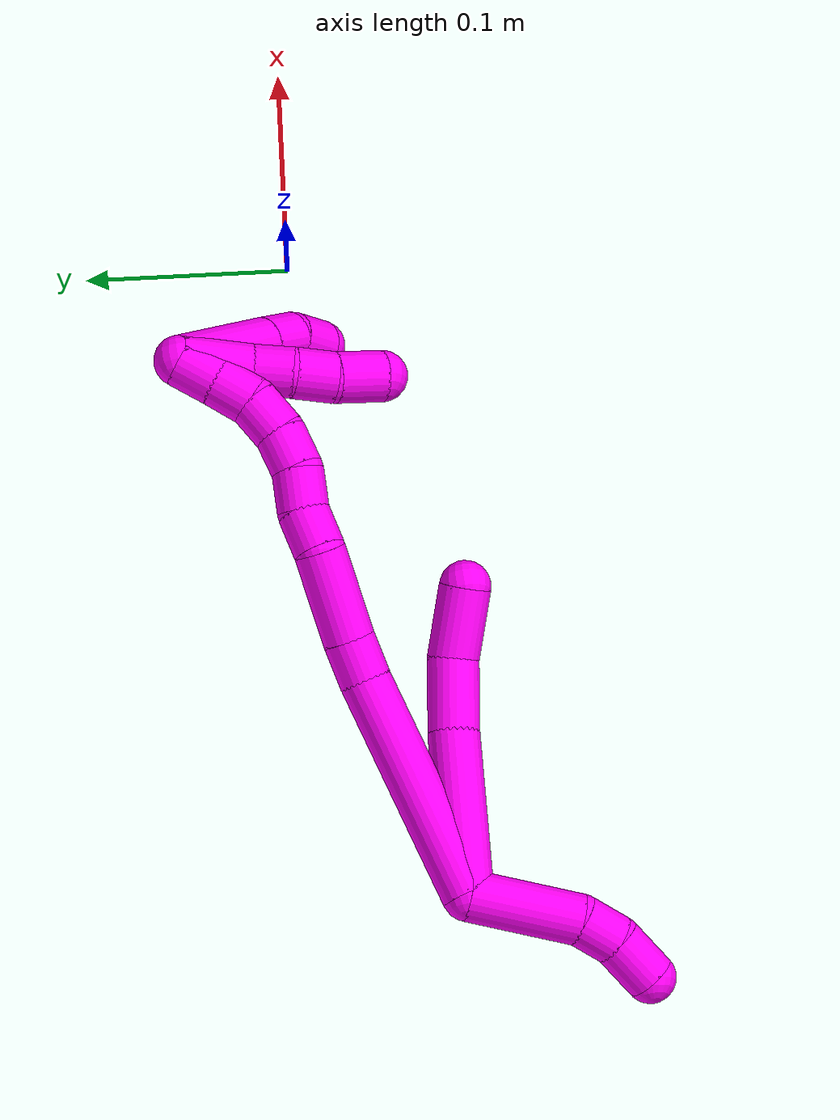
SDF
<sdf version="1.7">
 <world name="default">
  <model name="10">
   <static>0</static>
   <link name="10">
    <collision name="collision-cylinder-e_1_2_8">
     <pose>0.004964 0.00016 -0.039201 -3.1375 0.125959 -3.07674</pose>
     <geometry><cylinder><radius>0.0125</radius><length>0.079028</length></cylinder></geometry>
     <surface>
      <friction><ode><mu>1.16</mu><mu2>1.16</mu2><slip1>0</slip1><slip2>0</slip2></ode></friction>
      <contact><ode><kp>1e+06</kp><kd>1</kd><max_vel>0</max_vel><min_depth>0.001</min_depth></ode></contact>
     </surface>
    </collision>
    <visual name="visual-cylinder-e_1_2_8">
     <pose>0.004964 0.00016 -0.039201 -3.1375 0.125959 -3.07674</pose>
     <geometry><cylinder><radius>0.0125</radius><length>0.079028</length></cylinder></geometry>
     <material><ambient>1 0 0.964706 1</ambient></material>
    </visual>
    <collision name="collision-cylinder-e_2_8_9">
     <pose>0.014271 0.000201 -0.095752 3.13471 0.245283 3.08574</pose>
     <geometry><cylinder><radius>0.0125</radius><length>0.035773</length></cylinder></geometry>
     <surface>
      <friction><ode><mu>1.16</mu><mu2>1.16</mu2><slip1>0</slip1><slip2>0</slip2></ode></friction>
      <contact><ode><kp>1e+06</kp><kd>1</kd><max_vel>0</max_vel><min_depth>0.001</min_depth></ode></contact>
     </surface>
    </collision>
    <visual name="visual-cylinder-e_2_8_9">
     <pose>0.014271 0.000201 -0.095752 3.13471 0.245283 3.08574</pose>
     <geometry><cylinder><radius>0.0125</radius><length>0.035773</length></cylinder></geometry>
     <material><ambient>1 0 0.964706 1</ambient></material>
    </visual>
    <collision name="collision-cylinder-e_3_9_6">
     <pose>0.027957 6.4e-05 -0.128018 3.14039 0.55959 3.1374</pose>
     <geometry><cylinder><radius>0.0125</radius><length>0.035199</length></cylinder></geometry>
     <surface>
      <friction><ode><mu>1.16</mu><mu2>1.16</mu2><slip1>0</slip1><slip2>0</slip2></ode></friction>
      <contact><ode><kp>1e+06</kp><kd>1</kd><max_vel>0</max_vel><min_depth>0.001</min_depth></ode></contact>
     </surface>
    </collision>
    <visual name="visual-cylinder-e_3_9_6">
     <pose>0.027957 6.4e-05 -0.128018 3.14039 0.55959 3.1374</pose>
     <geometry><cylinder><radius>0.0125</radius><length>0.035199</length></cylinder></geometry>
     <material><ambient>1 0 0.964706 1</ambient></material>
    </visual>
    <collision name="collision-cylinder-e_1_2_10">
     <pose>0.009279 -0.024647 0.008109 1.25296 0.343456 0.249739</pose>
     <geometry><cylinder><radius>0.0125</radius><length>0.055112</length></cylinder></geometry>
     <surface>
      <friction><ode><mu>1.16</mu><mu2>1.16</mu2><slip1>0</slip1><slip2>0</slip2></ode></friction>
      <contact><ode><kp>1e+06</kp><kd>1</kd><max_vel>0</max_vel><min_depth>0.001</min_depth></ode></contact>
     </surface>
    </collision>
    <visual name="visual-cylinder-e_1_2_10">
     <pose>0.009279 -0.024647 0.008109 1.25296 0.343456 0.249739</pose>
     <geometry><cylinder><radius>0.0125</radius><length>0.055112</length></cylinder></geometry>
     <material><ambient>1 0 0.964706 1</ambient></material>
    </visual>
    <collision name="collision-cylinder-e_2_10_11">
     <pose>0.019658 -0.057935 0.021325 1.03692 0.109142 0.06231</pose>
     <geometry><cylinder><radius>0.0125</radius><length>0.020196</length></cylinder></geometry>
     <surface>
      <friction><ode><mu>1.16</mu><mu2>1.16</mu2><slip1>0</slip1><slip2>0</slip2></ode></friction>
      <contact><ode><kp>1e+06</kp><kd>1</kd><max_vel>0</max_vel><min_depth>0.001</min_depth></ode></contact>
     </surface>
    </collision>
    <visual name="visual-cylinder-e_2_10_11">
     <pose>0.019658 -0.057935 0.021325 1.03692 0.109142 0.06231</pose>
     <geometry><cylinder><radius>0.0125</radius><length>0.020196</length></cylinder></geometry>
     <material><ambient>1 0 0.964706 1</ambient></material>
    </visual>
    <collision name="collision-cylinder-e_3_11_5">
     <pose>0.019886 -0.075547 0.034871 0.816017 -0.070727 -0.030583</pose>
     <geometry><cylinder><radius>0.0125</radius><length>0.024692</length></cylinder></geometry>
     <surface>
      <friction><ode><mu>1.16</mu><mu2>1.16</mu2><slip1>0</slip1><slip2>0</slip2></ode></friction>
      <contact><ode><kp>1e+06</kp><kd>1</kd><max_vel>0</max_vel><min_depth>0.001</min_depth></ode></contact>
     </surface>
    </collision>
    <visual name="visual-cylinder-e_3_11_5">
     <pose>0.019886 -0.075547 0.034871 0.816017 -0.070727 -0.030583</pose>
     <geometry><cylinder><radius>0.0125</radius><length>0.024692</length></cylinder></geometry>
     <material><ambient>1 0 0.964706 1</ambient></material>
    </visual>
    <collision name="collision-cylinder-e_1_2_12">
     <pose>5.2e-05 0.019761 -0.052839 -2.7837 0.000916 -0.005065</pose>
     <geometry><cylinder><radius>0.0125</radius><length>0.112827</length></cylinder></geometry>
     <surface>
      <friction><ode><mu>1.16</mu><mu2>1.16</mu2><slip1>0</slip1><slip2>0</slip2></ode></friction>
      <contact><ode><kp>1e+06</kp><kd>1</kd><max_vel>0</max_vel><min_depth>0.001</min_depth></ode></contact>
     </surface>
    </collision>
    <visual name="visual-cylinder-e_1_2_12">
     <pose>5.2e-05 0.019761 -0.052839 -2.7837 0.000916 -0.005065</pose>
     <geometry><cylinder><radius>0.0125</radius><length>0.112827</length></cylinder></geometry>
     <material><ambient>1 0 0.964706 1</ambient></material>
    </visual>
    <collision name="collision-cylinder-e_2_12_13">
     <pose>0.002503 0.044204 -0.115073 -2.6794 0.224748 -0.894385</pose>
     <geometry><cylinder><radius>0.0125</radius><length>0.021535</length></cylinder></geometry>
     <surface>
      <friction><ode><mu>1.16</mu><mu2>1.16</mu2><slip1>0</slip1><slip2>0</slip2></ode></friction>
      <contact><ode><kp>1e+06</kp><kd>1</kd><max_vel>0</max_vel><min_depth>0.001</min_depth></ode></contact>
     </surface>
    </collision>
    <visual name="visual-cylinder-e_2_12_13">
     <pose>0.002503 0.044204 -0.115073 -2.6794 0.224748 -0.894385</pose>
     <geometry><cylinder><radius>0.0125</radius><length>0.021535</length></cylinder></geometry>
     <material><ambient>1 0 0.964706 1</ambient></material>
    </visual>
    <collision name="collision-cylinder-e_3_13_14">
     <pose>0.01114 0.057825 -0.143869 -2.70976 0.284111 -1.15565</pose>
     <geometry><cylinder><radius>0.0125</radius><length>0.044508</length></cylinder></geometry>
     <surface>
      <friction><ode><mu>1.16</mu><mu2>1.16</mu2><slip1>0</slip1><slip2>0</slip2></ode></friction>
      <contact><ode><kp>1e+06</kp><kd>1</kd><max_vel>0</max_vel><min_depth>0.001</min_depth></ode></contact>
     </surface>
    </collision>
    <visual name="visual-cylinder-e_3_13_14">
     <pose>0.01114 0.057825 -0.143869 -2.70976 0.284111 -1.15565</pose>
     <geometry><cylinder><radius>0.0125</radius><length>0.044508</length></cylinder></geometry>
     <material><ambient>1 0 0.964706 1</ambient></material>
    </visual>
    <collision name="collision-cylinder-e_4_14_15">
     <pose>0.017149 0.069546 -0.173052 -2.8646 -0.022516 0.161186</pose>
     <geometry><cylinder><radius>0.0125</radius><length>0.020346</length></cylinder></geometry>
     <surface>
      <friction><ode><mu>1.16</mu><mu2>1.16</mu2><slip1>0</slip1><slip2>0</slip2></ode></friction>
      <contact><ode><kp>1e+06</kp><kd>1</kd><max_vel>0</max_vel><min_depth>0.001</min_depth></ode></contact>
     </surface>
    </collision>
    <visual name="visual-cylinder-e_4_14_15">
     <pose>0.017149 0.069546 -0.173052 -2.8646 -0.022516 0.161186</pose>
     <geometry><cylinder><radius>0.0125</radius><length>0.020346</length></cylinder></geometry>
     <material><ambient>1 0 0.964706 1</ambient></material>
    </visual>
    <collision name="collision-cylinder-e_5_15_16">
     <pose>0.018986 0.073601 -0.192736 -3.01373 0.204069 -2.02403</pose>
     <geometry><cylinder><radius>0.0125</radius><length>0.020389</length></cylinder></geometry>
     <surface>
      <friction><ode><mu>1.16</mu><mu2>1.16</mu2><slip1>0</slip1><slip2>0</slip2></ode></friction>
      <contact><ode><kp>1e+06</kp><kd>1</kd><max_vel>0</max_vel><min_depth>0.001</min_depth></ode></contact>
     </surface>
    </collision>
    <visual name="visual-cylinder-e_5_15_16">
     <pose>0.018986 0.073601 -0.192736 -3.01373 0.204069 -2.02403</pose>
     <geometry><cylinder><radius>0.0125</radius><length>0.020389</length></cylinder></geometry>
     <material><ambient>1 0 0.964706 1</ambient></material>
    </visual>
    <collision name="collision-cylinder-e_6_16_17">
     <pose>0.020489 0.077901 -0.212164 -2.83392 -0.056305 0.359292</pose>
     <geometry><cylinder><radius>0.0125</radius><length>0.020024</length></cylinder></geometry>
     <surface>
      <friction><ode><mu>1.16</mu><mu2>1.16</mu2><slip1>0</slip1><slip2>0</slip2></ode></friction>
      <contact><ode><kp>1e+06</kp><kd>1</kd><max_vel>0</max_vel><min_depth>0.001</min_depth></ode></contact>
     </surface>
    </collision>
    <visual name="visual-cylinder-e_6_16_17">
     <pose>0.020489 0.077901 -0.212164 -2.83392 -0.056305 0.359292</pose>
     <geometry><cylinder><radius>0.0125</radius><length>0.020024</length></cylinder></geometry>
     <material><ambient>1 0 0.964706 1</ambient></material>
    </visual>
    <collision name="collision-cylinder-e_7_17_18">
     <pose>0.018309 0.086261 -0.230123 -2.57764 -0.160577 0.541835</pose>
     <geometry><cylinder><radius>0.0125</radius><length>0.020215</length></cylinder></geometry>
     <surface>
      <friction><ode><mu>1.16</mu><mu2>1.16</mu2><slip1>0</slip1><slip2>0</slip2></ode></friction>
      <contact><ode><kp>1e+06</kp><kd>1</kd><max_vel>0</max_vel><min_depth>0.001</min_depth></ode></contact>
     </surface>
    </collision>
    <visual name="visual-cylinder-e_7_17_18">
     <pose>0.018309 0.086261 -0.230123 -2.57764 -0.160577 0.541835</pose>
     <geometry><cylinder><radius>0.0125</radius><length>0.020215</length></cylinder></geometry>
     <material><ambient>1 0 0.964706 1</ambient></material>
    </visual>
    <collision name="collision-cylinder-e_8_18_19">
     <pose>0.013229 0.098667 -0.244771 -2.29181 -0.352537 0.750079</pose>
     <geometry><cylinder><radius>0.0125</radius><length>0.020067</length></cylinder></geometry>
     <surface>
      <friction><ode><mu>1.16</mu><mu2>1.16</mu2><slip1>0</slip1><slip2>0</slip2></ode></friction>
      <contact><ode><kp>1e+06</kp><kd>1</kd><max_vel>0</max_vel><min_depth>0.001</min_depth></ode></contact>
     </surface>
    </collision>
    <visual name="visual-cylinder-e_8_18_19">
     <pose>0.013229 0.098667 -0.244771 -2.29181 -0.352537 0.750079</pose>
     <geometry><cylinder><radius>0.0125</radius><length>0.020067</length></cylinder></geometry>
     <material><ambient>1 0 0.964706 1</ambient></material>
    </visual>
    <collision name="collision-cylinder-e_9_19_1">
     <pose>0.006777 0.113431 -0.256719 -2.21117 -0.301902 0.588473</pose>
     <geometry><cylinder><radius>0.0125</radius><length>0.020091</length></cylinder></geometry>
     <surface>
      <friction><ode><mu>1.16</mu><mu2>1.16</mu2><slip1>0</slip1><slip2>0</slip2></ode></friction>
      <contact><ode><kp>1e+06</kp><kd>1</kd><max_vel>0</max_vel><min_depth>0.001</min_depth></ode></contact>
     </surface>
    </collision>
    <visual name="visual-cylinder-e_9_19_1">
     <pose>0.006777 0.113431 -0.256719 -2.21117 -0.301902 0.588473</pose>
     <geometry><cylinder><radius>0.0125</radius><length>0.020091</length></cylinder></geometry>
     <material><ambient>1 0 0.964706 1</ambient></material>
    </visual>
    <collision name="collision-cylinder-e_1_1_20">
     <pose>-9e-06 0.093518 -0.272198 1.91029 -0.129051 -0.182188</pose>
     <geometry><cylinder><radius>0.0125</radius><length>0.059042</length></cylinder></geometry>
     <surface>
      <friction><ode><mu>1.16</mu><mu2>1.16</mu2><slip1>0</slip1><slip2>0</slip2></ode></friction>
      <contact><ode><kp>1e+06</kp><kd>1</kd><max_vel>0</max_vel><min_depth>0.001</min_depth></ode></contact>
     </surface>
    </collision>
    <visual name="visual-cylinder-e_1_1_20">
     <pose>-9e-06 0.093518 -0.272198 1.91029 -0.129051 -0.182188</pose>
     <geometry><cylinder><radius>0.0125</radius><length>0.059042</length></cylinder></geometry>
     <material><ambient>1 0 0.964706 1</ambient></material>
    </visual>
    <collision name="collision-cylinder-e_2_20_21">
     <pose>-0.005029 0.056308 -0.285054 1.88364 -0.120419 -0.165336</pose>
     <geometry><cylinder><radius>0.0125</radius><length>0.020339</length></cylinder></geometry>
     <surface>
      <friction><ode><mu>1.16</mu><mu2>1.16</mu2><slip1>0</slip1><slip2>0</slip2></ode></friction>
      <contact><ode><kp>1e+06</kp><kd>1</kd><max_vel>0</max_vel><min_depth>0.001</min_depth></ode></contact>
     </surface>
    </collision>
    <visual name="visual-cylinder-e_2_20_21">
     <pose>-0.005029 0.056308 -0.285054 1.88364 -0.120419 -0.165336</pose>
     <geometry><cylinder><radius>0.0125</radius><length>0.020339</length></cylinder></geometry>
     <material><ambient>1 0 0.964706 1</ambient></material>
    </visual>
    <collision name="collision-cylinder-e_3_21_4">
     <pose>-0.00913 0.036805 -0.288389 1.59379 -0.283032 -0.289525</pose>
     <geometry><cylinder><radius>0.0125</radius><length>0.02062</length></cylinder></geometry>
     <surface>
      <friction><ode><mu>1.16</mu><mu2>1.16</mu2><slip1>0</slip1><slip2>0</slip2></ode></friction>
      <contact><ode><kp>1e+06</kp><kd>1</kd><max_vel>0</max_vel><min_depth>0.001</min_depth></ode></contact>
     </surface>
    </collision>
    <visual name="visual-cylinder-e_3_21_4">
     <pose>-0.00913 0.036805 -0.288389 1.59379 -0.283032 -0.289525</pose>
     <geometry><cylinder><radius>0.0125</radius><length>0.02062</length></cylinder></geometry>
     <material><ambient>1 0 0.964706 1</ambient></material>
    </visual>
    <collision name="collision-cylinder-e_1_1_22">
     <pose>0.008899 0.104429 -0.259747 1.41031 0.293349 0.250173</pose>
     <geometry><cylinder><radius>0.0125</radius><length>0.035331</length></cylinder></geometry>
     <surface>
      <friction><ode><mu>1.16</mu><mu2>1.16</mu2><slip1>0</slip1><slip2>0</slip2></ode></friction>
      <contact><ode><kp>1e+06</kp><kd>1</kd><max_vel>0</max_vel><min_depth>0.001</min_depth></ode></contact>
     </surface>
    </collision>
    <visual name="visual-cylinder-e_1_1_22">
     <pose>0.008899 0.104429 -0.259747 1.41031 0.293349 0.250173</pose>
     <geometry><cylinder><radius>0.0125</radius><length>0.035331</length></cylinder></geometry>
     <material><ambient>1 0 0.964706 1</ambient></material>
    </visual>
    <collision name="collision-cylinder-e_2_22_23">
     <pose>0.018928 0.079154 -0.255001 1.33703 0.508841 0.405171</pose>
     <geometry><cylinder><radius>0.0125</radius><length>0.020203</length></cylinder></geometry>
     <surface>
      <friction><ode><mu>1.16</mu><mu2>1.16</mu2><slip1>0</slip1><slip2>0</slip2></ode></friction>
      <contact><ode><kp>1e+06</kp><kd>1</kd><max_vel>0</max_vel><min_depth>0.001</min_depth></ode></contact>
     </surface>
    </collision>
    <visual name="visual-cylinder-e_2_22_23">
     <pose>0.018928 0.079154 -0.255001 1.33703 0.508841 0.405171</pose>
     <geometry><cylinder><radius>0.0125</radius><length>0.020203</length></cylinder></geometry>
     <material><ambient>1 0 0.964706 1</ambient></material>
    </visual>
    <collision name="collision-cylinder-e_3_23_24">
     <pose>0.027053 0.061034 -0.251315 1.4002 0.31966 0.269967</pose>
     <geometry><cylinder><radius>0.0125</radius><length>0.02039</length></cylinder></geometry>
     <surface>
      <friction><ode><mu>1.16</mu><mu2>1.16</mu2><slip1>0</slip1><slip2>0</slip2></ode></friction>
      <contact><ode><kp>1e+06</kp><kd>1</kd><max_vel>0</max_vel><min_depth>0.001</min_depth></ode></contact>
     </surface>
    </collision>
    <visual name="visual-cylinder-e_3_23_24">
     <pose>0.027053 0.061034 -0.251315 1.4002 0.31966 0.269967</pose>
     <geometry><cylinder><radius>0.0125</radius><length>0.02039</length></cylinder></geometry>
     <material><ambient>1 0 0.964706 1</ambient></material>
    </visual>
    <collision name="collision-cylinder-e_4_24_3">
     <pose>0.033416 0.039884 -0.24997 1.59649 0.265604 0.272435</pose>
     <geometry><cylinder><radius>0.0125</radius><length>0.024077</length></cylinder></geometry>
     <surface>
      <friction><ode><mu>1.16</mu><mu2>1.16</mu2><slip1>0</slip1><slip2>0</slip2></ode></friction>
      <contact><ode><kp>1e+06</kp><kd>1</kd><max_vel>0</max_vel><min_depth>0.001</min_depth></ode></contact>
     </surface>
    </collision>
    <visual name="visual-cylinder-e_4_24_3">
     <pose>0.033416 0.039884 -0.24997 1.59649 0.265604 0.272435</pose>
     <geometry><cylinder><radius>0.0125</radius><length>0.024077</length></cylinder></geometry>
     <material><ambient>1 0 0.964706 1</ambient></material>
    </visual>
    <collision name="collision-sphere-3">
     <pose>0.036576 0.028271 -0.250268 0 -0 0</pose>
     <geometry><sphere><radius>0.0125</radius></sphere></geometry>
     <surface>
      <friction><ode><mu>1.16</mu><mu2>1.16</mu2><slip1>0</slip1><slip2>0</slip2></ode></friction>
      <contact><ode><kp>1e+06</kp><kd>1</kd><max_vel>0</max_vel><min_depth>0.001</min_depth></ode></contact>
     </surface>
    </collision>
    <visual name="visual-sphere-3">
     <pose>0.036576 0.028271 -0.250268 0 -0 0</pose>
     <geometry><sphere><radius>0.0125</radius></sphere></geometry>
     <material><ambient>1 0 0.964706 1</ambient></material>
    </visual>
    <collision name="collision-sphere-24">
     <pose>0.030256 0.051496 -0.249672 0 -0 0</pose>
     <geometry><sphere><radius>0.0125</radius></sphere></geometry>
     <surface>
      <friction><ode><mu>1.16</mu><mu2>1.16</mu2><slip1>0</slip1><slip2>0</slip2></ode></friction>
      <contact><ode><kp>1e+06</kp><kd>1</kd><max_vel>0</max_vel><min_depth>0.001</min_depth></ode></contact>
     </surface>
    </collision>
    <visual name="visual-sphere-24">
     <pose>0.030256 0.051496 -0.249672 0 -0 0</pose>
     <geometry><sphere><radius>0.0125</radius></sphere></geometry>
     <material><ambient>1 0 0.964706 1</ambient></material>
    </visual>
    <collision name="collision-sphere-23">
     <pose>0.023849 0.070572 -0.252958 0 -0 0</pose>
     <geometry><sphere><radius>0.0125</radius></sphere></geometry>
     <surface>
      <friction><ode><mu>1.16</mu><mu2>1.16</mu2><slip1>0</slip1><slip2>0</slip2></ode></friction>
      <contact><ode><kp>1e+06</kp><kd>1</kd><max_vel>0</max_vel><min_depth>0.001</min_depth></ode></contact>
     </surface>
    </collision>
    <visual name="visual-sphere-23">
     <pose>0.023849 0.070572 -0.252958 0 -0 0</pose>
     <geometry><sphere><radius>0.0125</radius></sphere></geometry>
     <material><ambient>1 0 0.964706 1</ambient></material>
    </visual>
    <collision name="collision-sphere-22">
     <pose>0.014007 0.087735 -0.257044 0 -0 0</pose>
     <geometry><sphere><radius>0.0125</radius></sphere></geometry>
     <surface>
      <friction><ode><mu>1.16</mu><mu2>1.16</mu2><slip1>0</slip1><slip2>0</slip2></ode></friction>
      <contact><ode><kp>1e+06</kp><kd>1</kd><max_vel>0</max_vel><min_depth>0.001</min_depth></ode></contact>
     </surface>
    </collision>
    <visual name="visual-sphere-22">
     <pose>0.014007 0.087735 -0.257044 0 -0 0</pose>
     <geometry><sphere><radius>0.0125</radius></sphere></geometry>
     <material><ambient>1 0 0.964706 1</ambient></material>
    </visual>
    <collision name="collision-sphere-4">
     <pose>-0.012009 0.026908 -0.288617 0 -0 0</pose>
     <geometry><sphere><radius>0.0125</radius></sphere></geometry>
     <surface>
      <friction><ode><mu>1.16</mu><mu2>1.16</mu2><slip1>0</slip1><slip2>0</slip2></ode></friction>
      <contact><ode><kp>1e+06</kp><kd>1</kd><max_vel>0</max_vel><min_depth>0.001</min_depth></ode></contact>
     </surface>
    </collision>
    <visual name="visual-sphere-4">
     <pose>-0.012009 0.026908 -0.288617 0 -0 0</pose>
     <geometry><sphere><radius>0.0125</radius></sphere></geometry>
     <material><ambient>1 0 0.964706 1</ambient></material>
    </visual>
    <collision name="collision-sphere-21">
     <pose>-0.006251 0.046702 -0.288161 0 -0 0</pose>
     <geometry><sphere><radius>0.0125</radius></sphere></geometry>
     <surface>
      <friction><ode><mu>1.16</mu><mu2>1.16</mu2><slip1>0</slip1><slip2>0</slip2></ode></friction>
      <contact><ode><kp>1e+06</kp><kd>1</kd><max_vel>0</max_vel><min_depth>0.001</min_depth></ode></contact>
     </surface>
    </collision>
    <visual name="visual-sphere-21">
     <pose>-0.006251 0.046702 -0.288161 0 -0 0</pose>
     <geometry><sphere><radius>0.0125</radius></sphere></geometry>
     <material><ambient>1 0 0.964706 1</ambient></material>
    </visual>
    <collision name="collision-sphere-20">
     <pose>-0.003808 0.065913 -0.281947 0 -0 0</pose>
     <geometry><sphere><radius>0.0125</radius></sphere></geometry>
     <surface>
      <friction><ode><mu>1.16</mu><mu2>1.16</mu2><slip1>0</slip1><slip2>0</slip2></ode></friction>
      <contact><ode><kp>1e+06</kp><kd>1</kd><max_vel>0</max_vel><min_depth>0.001</min_depth></ode></contact>
     </surface>
    </collision>
    <visual name="visual-sphere-20">
     <pose>-0.003808 0.065913 -0.281947 0 -0 0</pose>
     <geometry><sphere><radius>0.0125</radius></sphere></geometry>
     <material><ambient>1 0 0.964706 1</ambient></material>
    </visual>
    <collision name="collision-sphere-11">
     <pose>0.020758 -0.066576 0.026433 0 -0 0</pose>
     <geometry><sphere><radius>0.0125</radius></sphere></geometry>
     <surface>
      <friction><ode><mu>1.16</mu><mu2>1.16</mu2><slip1>0</slip1><slip2>0</slip2></ode></friction>
      <contact><ode><kp>1e+06</kp><kd>1</kd><max_vel>0</max_vel><min_depth>0.001</min_depth></ode></contact>
     </surface>
    </collision>
    <visual name="visual-sphere-11">
     <pose>0.020758 -0.066576 0.026433 0 -0 0</pose>
     <geometry><sphere><radius>0.0125</radius></sphere></geometry>
     <material><ambient>1 0 0.964706 1</ambient></material>
    </visual>
    <collision name="collision-sphere-10">
     <pose>0.018558 -0.049294 0.016217 0 -0 0</pose>
     <geometry><sphere><radius>0.0125</radius></sphere></geometry>
     <surface>
      <friction><ode><mu>1.16</mu><mu2>1.16</mu2><slip1>0</slip1><slip2>0</slip2></ode></friction>
      <contact><ode><kp>1e+06</kp><kd>1</kd><max_vel>0</max_vel><min_depth>0.001</min_depth></ode></contact>
     </surface>
    </collision>
    <visual name="visual-sphere-10">
     <pose>0.018558 -0.049294 0.016217 0 -0 0</pose>
     <geometry><sphere><radius>0.0125</radius></sphere></geometry>
     <material><ambient>1 0 0.964706 1</ambient></material>
    </visual>
    <collision name="collision-sphere-6">
     <pose>0.0373 4.6e-05 -0.142933 0 -0 0</pose>
     <geometry><sphere><radius>0.0125</radius></sphere></geometry>
     <surface>
      <friction><ode><mu>1.16</mu><mu2>1.16</mu2><slip1>0</slip1><slip2>0</slip2></ode></friction>
      <contact><ode><kp>1e+06</kp><kd>1</kd><max_vel>0</max_vel><min_depth>0.001</min_depth></ode></contact>
     </surface>
    </collision>
    <visual name="visual-sphere-6">
     <pose>0.0373 4.6e-05 -0.142933 0 -0 0</pose>
     <geometry><sphere><radius>0.0125</radius></sphere></geometry>
     <material><ambient>1 0 0.964706 1</ambient></material>
    </visual>
    <collision name="collision-sphere-9">
     <pose>0.018615 8.2e-05 -0.113103 0 -0 0</pose>
     <geometry><sphere><radius>0.0125</radius></sphere></geometry>
     <surface>
      <friction><ode><mu>1.16</mu><mu2>1.16</mu2><slip1>0</slip1><slip2>0</slip2></ode></friction>
      <contact><ode><kp>1e+06</kp><kd>1</kd><max_vel>0</max_vel><min_depth>0.001</min_depth></ode></contact>
     </surface>
    </collision>
    <visual name="visual-sphere-9">
     <pose>0.018615 8.2e-05 -0.113103 0 -0 0</pose>
     <geometry><sphere><radius>0.0125</radius></sphere></geometry>
     <material><ambient>1 0 0.964706 1</ambient></material>
    </visual>
    <collision name="collision-sphere-2">
     <geometry><sphere><radius>0.0125</radius></sphere></geometry>
     <surface>
      <friction><ode><mu>1.16</mu><mu2>1.16</mu2><slip1>0</slip1><slip2>0</slip2></ode></friction>
      <contact><ode><kp>1e+06</kp><kd>1</kd><max_vel>0</max_vel><min_depth>0.001</min_depth></ode></contact>
     </surface>
    </collision>
    <visual name="visual-sphere-2">
     <geometry><sphere><radius>0.0125</radius></sphere></geometry>
     <material><ambient>1 0 0.964706 1</ambient></material>
    </visual>
    <collision name="collision-sphere-19">
     <pose>0.009764 0.105741 -0.250988 0 -0 0</pose>
     <geometry><sphere><radius>0.0125</radius></sphere></geometry>
     <surface>
      <friction><ode><mu>1.16</mu><mu2>1.16</mu2><slip1>0</slip1><slip2>0</slip2></ode></friction>
      <contact><ode><kp>1e+06</kp><kd>1</kd><max_vel>0</max_vel><min_depth>0.001</min_depth></ode></contact>
     </surface>
    </collision>
    <visual name="visual-sphere-19">
     <pose>0.009764 0.105741 -0.250988 0 -0 0</pose>
     <geometry><sphere><radius>0.0125</radius></sphere></geometry>
     <material><ambient>1 0 0.964706 1</ambient></material>
    </visual>
    <collision name="collision-sphere-8">
     <pose>0.009928 0.000321 -0.078402 0 -0 0</pose>
     <geometry><sphere><radius>0.0125</radius></sphere></geometry>
     <surface>
      <friction><ode><mu>1.16</mu><mu2>1.16</mu2><slip1>0</slip1><slip2>0</slip2></ode></friction>
      <contact><ode><kp>1e+06</kp><kd>1</kd><max_vel>0</max_vel><min_depth>0.001</min_depth></ode></contact>
     </surface>
    </collision>
    <visual name="visual-sphere-8">
     <pose>0.009928 0.000321 -0.078402 0 -0 0</pose>
     <geometry><sphere><radius>0.0125</radius></sphere></geometry>
     <material><ambient>1 0 0.964706 1</ambient></material>
    </visual>
    <collision name="collision-sphere-5">
     <pose>0.019013 -0.084517 0.043308 0 -0 0</pose>
     <geometry><sphere><radius>0.0125</radius></sphere></geometry>
     <surface>
      <friction><ode><mu>1.16</mu><mu2>1.16</mu2><slip1>0</slip1><slip2>0</slip2></ode></friction>
      <contact><ode><kp>1e+06</kp><kd>1</kd><max_vel>0</max_vel><min_depth>0.001</min_depth></ode></contact>
     </surface>
    </collision>
    <visual name="visual-sphere-5">
     <pose>0.019013 -0.084517 0.043308 0 -0 0</pose>
     <geometry><sphere><radius>0.0125</radius></sphere></geometry>
     <material><ambient>1 0 0.964706 1</ambient></material>
    </visual>
    <collision name="collision-sphere-12">
     <pose>0.000103 0.039523 -0.105678 0 -0 0</pose>
     <geometry><sphere><radius>0.0125</radius></sphere></geometry>
     <surface>
      <friction><ode><mu>1.16</mu><mu2>1.16</mu2><slip1>0</slip1><slip2>0</slip2></ode></friction>
      <contact><ode><kp>1e+06</kp><kd>1</kd><max_vel>0</max_vel><min_depth>0.001</min_depth></ode></contact>
     </surface>
    </collision>
    <visual name="visual-sphere-12">
     <pose>0.000103 0.039523 -0.105678 0 -0 0</pose>
     <geometry><sphere><radius>0.0125</radius></sphere></geometry>
     <material><ambient>1 0 0.964706 1</ambient></material>
    </visual>
    <collision name="collision-sphere-13">
     <pose>0.004903 0.048884 -0.124468 0 -0 0</pose>
     <geometry><sphere><radius>0.0125</radius></sphere></geometry>
     <surface>
      <friction><ode><mu>1.16</mu><mu2>1.16</mu2><slip1>0</slip1><slip2>0</slip2></ode></friction>
      <contact><ode><kp>1e+06</kp><kd>1</kd><max_vel>0</max_vel><min_depth>0.001</min_depth></ode></contact>
     </surface>
    </collision>
    <visual name="visual-sphere-13">
     <pose>0.004903 0.048884 -0.124468 0 -0 0</pose>
     <geometry><sphere><radius>0.0125</radius></sphere></geometry>
     <material><ambient>1 0 0.964706 1</ambient></material>
    </visual>
    <collision name="collision-sphere-14">
     <pose>0.017378 0.066765 -0.16327 0 -0 0</pose>
     <geometry><sphere><radius>0.0125</radius></sphere></geometry>
     <surface>
      <friction><ode><mu>1.16</mu><mu2>1.16</mu2><slip1>0</slip1><slip2>0</slip2></ode></friction>
      <contact><ode><kp>1e+06</kp><kd>1</kd><max_vel>0</max_vel><min_depth>0.001</min_depth></ode></contact>
     </surface>
    </collision>
    <visual name="visual-sphere-14">
     <pose>0.017378 0.066765 -0.16327 0 -0 0</pose>
     <geometry><sphere><radius>0.0125</radius></sphere></geometry>
     <material><ambient>1 0 0.964706 1</ambient></material>
    </visual>
    <collision name="collision-sphere-15">
     <pose>0.01692 0.072328 -0.182835 0 -0 0</pose>
     <geometry><sphere><radius>0.0125</radius></sphere></geometry>
     <surface>
      <friction><ode><mu>1.16</mu><mu2>1.16</mu2><slip1>0</slip1><slip2>0</slip2></ode></friction>
      <contact><ode><kp>1e+06</kp><kd>1</kd><max_vel>0</max_vel><min_depth>0.001</min_depth></ode></contact>
     </surface>
    </collision>
    <visual name="visual-sphere-15">
     <pose>0.01692 0.072328 -0.182835 0 -0 0</pose>
     <geometry><sphere><radius>0.0125</radius></sphere></geometry>
     <material><ambient>1 0 0.964706 1</ambient></material>
    </visual>
    <collision name="collision-sphere-16">
     <pose>0.021052 0.074874 -0.202638 0 -0 0</pose>
     <geometry><sphere><radius>0.0125</radius></sphere></geometry>
     <surface>
      <friction><ode><mu>1.16</mu><mu2>1.16</mu2><slip1>0</slip1><slip2>0</slip2></ode></friction>
      <contact><ode><kp>1e+06</kp><kd>1</kd><max_vel>0</max_vel><min_depth>0.001</min_depth></ode></contact>
     </surface>
    </collision>
    <visual name="visual-sphere-16">
     <pose>0.021052 0.074874 -0.202638 0 -0 0</pose>
     <geometry><sphere><radius>0.0125</radius></sphere></geometry>
     <material><ambient>1 0 0.964706 1</ambient></material>
    </visual>
    <collision name="collision-sphere-17">
     <pose>0.019925 0.080928 -0.221691 0 -0 0</pose>
     <geometry><sphere><radius>0.0125</radius></sphere></geometry>
     <surface>
      <friction><ode><mu>1.16</mu><mu2>1.16</mu2><slip1>0</slip1><slip2>0</slip2></ode></friction>
      <contact><ode><kp>1e+06</kp><kd>1</kd><max_vel>0</max_vel><min_depth>0.001</min_depth></ode></contact>
     </surface>
    </collision>
    <visual name="visual-sphere-17">
     <pose>0.019925 0.080928 -0.221691 0 -0 0</pose>
     <geometry><sphere><radius>0.0125</radius></sphere></geometry>
     <material><ambient>1 0 0.964706 1</ambient></material>
    </visual>
    <collision name="collision-sphere-18">
     <pose>0.016693 0.091594 -0.238555 0 -0 0</pose>
     <geometry><sphere><radius>0.0125</radius></sphere></geometry>
     <surface>
      <friction><ode><mu>1.16</mu><mu2>1.16</mu2><slip1>0</slip1><slip2>0</slip2></ode></friction>
      <contact><ode><kp>1e+06</kp><kd>1</kd><max_vel>0</max_vel><min_depth>0.001</min_depth></ode></contact>
     </surface>
    </collision>
    <visual name="visual-sphere-18">
     <pose>0.016693 0.091594 -0.238555 0 -0 0</pose>
     <geometry><sphere><radius>0.0125</radius></sphere></geometry>
     <material><ambient>1 0 0.964706 1</ambient></material>
    </visual>
    <collision name="collision-sphere-1">
     <pose>0.003791 0.121122 -0.262449 0 -0 0</pose>
     <geometry><sphere><radius>0.0125</radius></sphere></geometry>
     <surface>
      <friction><ode><mu>1.16</mu><mu2>1.16</mu2><slip1>0</slip1><slip2>0</slip2></ode></friction>
      <contact><ode><kp>1e+06</kp><kd>1</kd><max_vel>0</max_vel><min_depth>0.001</min_depth></ode></contact>
     </surface>
    </collision>
    <visual name="visual-sphere-1">
     <pose>0.003791 0.121122 -0.262449 0 -0 0</pose>
     <geometry><sphere><radius>0.0125</radius></sphere></geometry>
     <material><ambient>1 0 0.964706 1</ambient></material>
    </visual>
    <inertial>
     <pose>0.010029 0.035707 -0.138454 0 -0 0</pose>
     <mass>0.75</mass>
     <inertia>
      <ixx>0.000128</ixx>
      <ixy>0</ixy>
      <ixz>0</ixz>
      <iyy>-8.5e-05</iyy>
      <iyz>0</iyz>
      <izz>-5.1e-05</izz>
     </inertia>
    </inertial>
   </link>
   <pose>-0.327904 -0.07037 0.081379 1.26274 -0.95342 -1.21928</pose>
  </model>
 </world>
</sdf>
